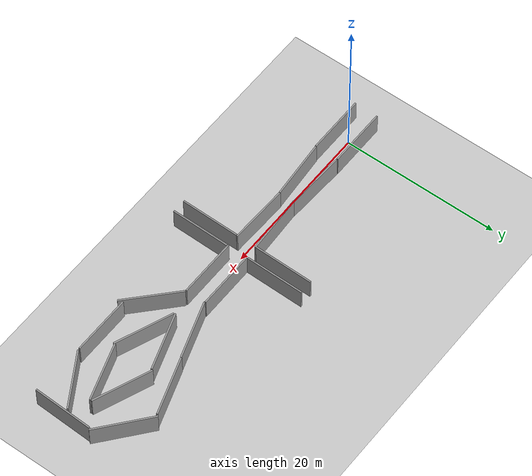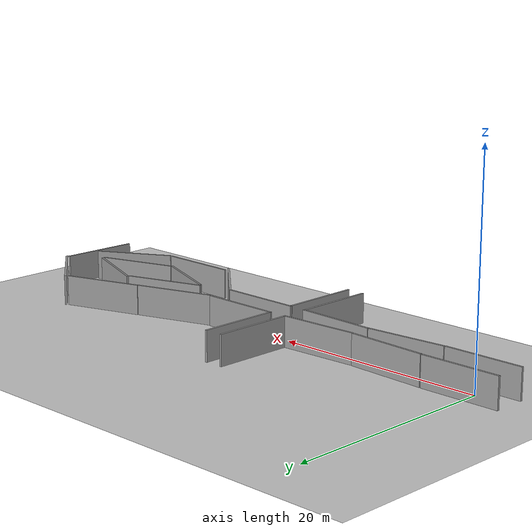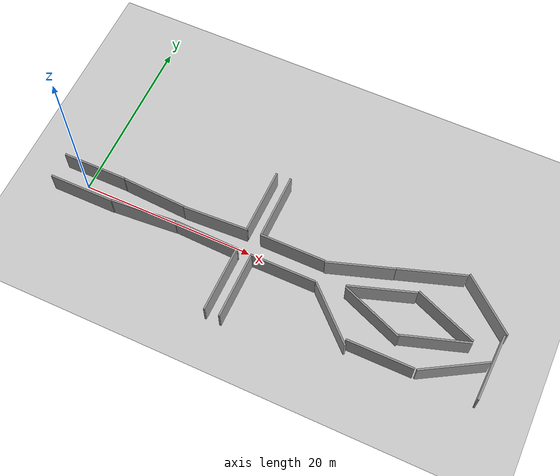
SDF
<sdf version="1.7">
 <world name="default">
  <light name="sun" type="directional">
   <pose>0 0 10 0 -0 0</pose>
   <diffuse>0.8 0.8 0.8 1</diffuse>
   <specular>0.2 0.2 0.2 1</specular>
   <attenuation>
    <range>1000</range>
    <constant>0.9</constant>
    <linear>0.01</linear>
    <quadratic>0.001</quadratic>
   </attenuation>
   <direction>-0.5 0.1 -0.9</direction>
   <spot><inner_angle>0</inner_angle><outer_angle>0</outer_angle><falloff>0</falloff></spot>
  </light>
  <model name="ground_plane">
   <static>1</static>
   <link name="link">
    <collision name="collision">
     <geometry><plane><normal>0 0 1</normal><size>100 100</size></plane></geometry>
     <surface><friction><ode><mu>100</mu><mu2>50</mu2></ode></friction></surface>
    </collision>
    <visual name="visual">
     <cast_shadows>0</cast_shadows>
     <geometry><plane><normal>0 0 1</normal><size>100 100</size></plane></geometry>
     <material>
      <script><uri>file://media/materials/scripts/gazebo.material</uri><name>Gazebo/Grey</name></script>
     </material>
    </visual>
   </link>
  </model>
  <gravity>0 0 -9.8</gravity>
  <magnetic_field>6e-06 2.3e-05 -4.2e-05</magnetic_field>
  <atmosphere type="adiabatic"/>
  <physics type="ode">
   <max_step_size>0.001</max_step_size>
   <real_time_factor>1</real_time_factor>
   <real_time_update_rate>1000</real_time_update_rate>
  </physics>
  <scene><ambient>0.4 0.4 0.4 1</ambient><background>0.7 0.7 0.7 1</background><shadows>1</shadows></scene>
  <spherical_coordinates>
   <surface_model>EARTH_WGS84</surface_model>
   <latitude_deg>0</latitude_deg>
   <longitude_deg>0</longitude_deg>
   <elevation>0</elevation>
   <heading_deg>0</heading_deg>
  </spherical_coordinates>
  <model name="grey_wall">
   <static>1</static>
   <link name="link">
    <pose>0 0 1.4 0 -0 0</pose>
    <collision name="collision"><geometry><box><size>7.5 0.2 2.8</size></box></geometry></collision>
    <visual name="visual">
     <cast_shadows>0</cast_shadows>
     <geometry><box><size>7.5 0.2 2.8</size></box></geometry>
     <material>
      <script>
       <uri>model://grey_wall/materials/scripts</uri>
       <uri>model://grey_wall/materials/textures</uri>
       <name>vrc/grey_wall</name>
      </script>
     </material>
    </visual>
   </link>
   <pose>0.45 1.5 0 0 -0 0</pose>
  </model>
  <model name="grey_wall_clone">
   <static>1</static>
   <link name="link">
    <pose>0 0 1.4 0 -0 0</pose>
    <collision name="collision"><geometry><box><size>7.5 0.2 2.8</size></box></geometry></collision>
    <visual name="visual">
     <cast_shadows>0</cast_shadows>
     <geometry><box><size>7.5 0.2 2.8</size></box></geometry>
     <material>
      <script>
       <uri>model://grey_wall/materials/scripts</uri>
       <uri>model://grey_wall/materials/textures</uri>
       <name>vrc/grey_wall</name>
      </script>
     </material>
    </visual>
   </link>
   <pose>0.45 -1.5 0 0 -0 0</pose>
  </model>
  <model name="grey_wall_clone_0">
   <static>1</static>
   <link name="link">
    <pose>0 0 1.4 0 -0 0</pose>
    <collision name="collision"><geometry><box><size>7.5 0.2 2.8</size></box></geometry></collision>
    <visual name="visual">
     <cast_shadows>0</cast_shadows>
     <geometry><box><size>7.5 0.2 2.8</size></box></geometry>
     <material>
      <script>
       <uri>model://grey_wall/materials/scripts</uri>
       <uri>model://grey_wall/materials/textures</uri>
       <name>vrc/grey_wall</name>
      </script>
     </material>
    </visual>
   </link>
   <pose>8.0405 1.2886 0 0 0 -0.048757</pose>
  </model>
  <model name="grey_wall_clone_1">
   <static>1</static>
   <link name="link">
    <pose>0 0 1.4 0 -0 0</pose>
    <collision name="collision"><geometry><box><size>7.5 0.2 2.8</size></box></geometry></collision>
    <visual name="visual">
     <cast_shadows>0</cast_shadows>
     <geometry><box><size>7.5 0.2 2.8</size></box></geometry>
     <material>
      <script>
       <uri>model://grey_wall/materials/scripts</uri>
       <uri>model://grey_wall/materials/textures</uri>
       <name>vrc/grey_wall</name>
      </script>
     </material>
    </visual>
   </link>
   <pose>7.99265 -1.17223 0 0 -0 0.076229</pose>
  </model>
  <model name="grey_wall_clone_2">
   <static>1</static>
   <link name="link">
    <pose>0 0 1.4 0 -0 0</pose>
    <collision name="collision"><geometry><box><size>7.5 0.2 2.8</size></box></geometry></collision>
    <visual name="visual">
     <cast_shadows>0</cast_shadows>
     <geometry><box><size>7.5 0.2 2.8</size></box></geometry>
     <material>
      <script>
       <uri>model://grey_wall/materials/scripts</uri>
       <uri>model://grey_wall/materials/textures</uri>
       <name>vrc/grey_wall</name>
      </script>
     </material>
    </visual>
   </link>
   <pose>15.4908 1.24997 0 0 -0 0.047505</pose>
  </model>
  <model name="grey_wall_clone_3">
   <static>1</static>
   <link name="link">
    <pose>0 0 1.4 0 -0 0</pose>
    <collision name="collision"><geometry><box><size>7.5 0.2 2.8</size></box></geometry></collision>
    <visual name="visual">
     <cast_shadows>0</cast_shadows>
     <geometry><box><size>7.5 0.2 2.8</size></box></geometry>
     <material>
      <script>
       <uri>model://grey_wall/materials/scripts</uri>
       <uri>model://grey_wall/materials/textures</uri>
       <name>vrc/grey_wall</name>
      </script>
     </material>
    </visual>
   </link>
   <pose>15.5134 -0.959954 0 0 0 -0.028174</pose>
  </model>
  <model name="grey_wall_clone_4">
   <static>1</static>
   <link name="link">
    <pose>0 0 1.4 0 -0 0</pose>
    <collision name="collision"><geometry><box><size>7.5 0.2 2.8</size></box></geometry></collision>
    <visual name="visual">
     <cast_shadows>0</cast_shadows>
     <geometry><box><size>7.5 0.2 2.8</size></box></geometry>
     <material>
      <script>
       <uri>model://grey_wall/materials/scripts</uri>
       <uri>model://grey_wall/materials/textures</uri>
       <name>vrc/grey_wall</name>
      </script>
     </material>
    </visual>
   </link>
   <pose>19.1831 5.27057 0 0 0 -1.58093</pose>
  </model>
  <model name="grey_wall_clone_4_clone">
   <static>1</static>
   <link name="link">
    <pose>0 0 1.4 0 -0 0</pose>
    <collision name="collision"><geometry><box><size>7.5 0.2 2.8</size></box></geometry></collision>
    <visual name="visual">
     <cast_shadows>0</cast_shadows>
     <geometry><box><size>7.5 0.2 2.8</size></box></geometry>
     <material>
      <script>
       <uri>model://grey_wall/materials/scripts</uri>
       <uri>model://grey_wall/materials/textures</uri>
       <name>vrc/grey_wall</name>
      </script>
     </material>
    </visual>
   </link>
   <pose>19.1157 -4.93014 0 0 0 -1.58093</pose>
  </model>
  <model name="grey_wall_clone_4_clone_0">
   <static>1</static>
   <link name="link">
    <pose>0 0 1.4 0 -0 0</pose>
    <collision name="collision"><geometry><box><size>7.5 0.2 2.8</size></box></geometry></collision>
    <visual name="visual">
     <cast_shadows>0</cast_shadows>
     <geometry><box><size>7.5 0.2 2.8</size></box></geometry>
     <material>
      <script>
       <uri>model://grey_wall/materials/scripts</uri>
       <uri>model://grey_wall/materials/textures</uri>
       <name>vrc/grey_wall</name>
      </script>
     </material>
    </visual>
   </link>
   <pose>20.84 -4.94754 0 0 0 -1.58093</pose>
  </model>
  <model name="grey_wall_clone_4_clone_1">
   <static>1</static>
   <link name="link">
    <pose>0 0 1.4 0 -0 0</pose>
    <collision name="collision"><geometry><box><size>7.5 0.2 2.8</size></box></geometry></collision>
    <visual name="visual">
     <cast_shadows>0</cast_shadows>
     <geometry><box><size>7.5 0.2 2.8</size></box></geometry>
     <material>
      <script>
       <uri>model://grey_wall/materials/scripts</uri>
       <uri>model://grey_wall/materials/textures</uri>
       <name>vrc/grey_wall</name>
      </script>
     </material>
    </visual>
   </link>
   <pose>20.8674 5.30497 0 0 0 -1.58093</pose>
  </model>
  <model name="grey_wall_clone_3_clone">
   <static>1</static>
   <link name="link">
    <pose>0 0 1.4 0 -0 0</pose>
    <collision name="collision"><geometry><box><size>7.5 0.2 2.8</size></box></geometry></collision>
    <visual name="visual">
     <cast_shadows>0</cast_shadows>
     <geometry><box><size>7.5 0.2 2.8</size></box></geometry>
     <material>
      <script>
       <uri>model://grey_wall/materials/scripts</uri>
       <uri>model://grey_wall/materials/textures</uri>
       <name>vrc/grey_wall</name>
      </script>
     </material>
    </visual>
   </link>
   <pose>24.5451 -1.0915 0 0 -0 0</pose>
  </model>
  <model name="grey_wall_clone_3_clone_0">
   <static>1</static>
   <link name="link">
    <pose>0 0 1.4 0 -0 0</pose>
    <collision name="collision"><geometry><box><size>7.5 0.2 2.8</size></box></geometry></collision>
    <visual name="visual">
     <cast_shadows>0</cast_shadows>
     <geometry><box><size>7.5 0.2 2.8</size></box></geometry>
     <material>
      <script>
       <uri>model://grey_wall/materials/scripts</uri>
       <uri>model://grey_wall/materials/textures</uri>
       <name>vrc/grey_wall</name>
      </script>
     </material>
    </visual>
   </link>
   <pose>24.5 1.496 0 0 -0 0</pose>
  </model>
  <model name="grey_wall_clone_5">
   <static>1</static>
   <link name="link">
    <pose>0 0 1.4 0 -0 0</pose>
    <collision name="collision"><geometry><box><size>7.5 0.2 2.8</size></box></geometry></collision>
    <visual name="visual">
     <cast_shadows>0</cast_shadows>
     <geometry><box><size>7.5 0.2 2.8</size></box></geometry>
     <material>
      <script>
       <uri>model://grey_wall/materials/scripts</uri>
       <uri>model://grey_wall/materials/textures</uri>
       <name>vrc/grey_wall</name>
      </script>
     </material>
    </visual>
   </link>
   <pose>31.856 2.57631 0 0 -0 0.318871</pose>
  </model>
  <model name="grey_wall_clone_3_clone_clone">
   <static>1</static>
   <link name="link">
    <pose>0 0 1.4 0 -0 0</pose>
    <collision name="collision"><geometry><box><size>7.5 0.2 2.8</size></box></geometry></collision>
    <visual name="visual">
     <cast_shadows>0</cast_shadows>
     <geometry><box><size>7.5 0.2 2.8</size></box></geometry>
     <material>
      <script>
       <uri>model://grey_wall/materials/scripts</uri>
       <uri>model://grey_wall/materials/textures</uri>
       <name>vrc/grey_wall</name>
      </script>
     </material>
    </visual>
   </link>
   <pose>42.0085 0.942221 0 0 0 -0.386139</pose>
  </model>
  <model name="grey_wall_clone_3_clone_clone_clone">
   <static>1</static>
   <link name="link">
    <pose>0 0 1.4 0 -0 0</pose>
    <collision name="collision"><geometry><box><size>7.5 0.2 2.8</size></box></geometry></collision>
    <visual name="visual">
     <cast_shadows>0</cast_shadows>
     <geometry><box><size>7.5 0.2 2.8</size></box></geometry>
     <material>
      <script>
       <uri>model://grey_wall/materials/scripts</uri>
       <uri>model://grey_wall/materials/textures</uri>
       <name>vrc/grey_wall</name>
      </script>
     </material>
    </visual>
   </link>
   <pose>37.3824 -5.65589 0 0 -0 0</pose>
  </model>
  <model name="grey_wall_clone_5_clone">
   <static>1</static>
   <link name="link">
    <pose>0 0 1.4 0 -0 0</pose>
    <collision name="collision"><geometry><box><size>7.5 0.2 2.8</size></box></geometry></collision>
    <visual name="visual">
     <cast_shadows>0</cast_shadows>
     <geometry><box><size>7.5 0.2 2.8</size></box></geometry>
     <material>
      <script>
       <uri>model://grey_wall/materials/scripts</uri>
       <uri>model://grey_wall/materials/textures</uri>
       <name>vrc/grey_wall</name>
      </script>
     </material>
    </visual>
   </link>
   <pose>38.9993 4.97139 0 0 -0 0.318871</pose>
  </model>
  <model name="grey_wall_clone_5_clone_0">
   <static>1</static>
   <link name="link">
    <pose>0 0 1.4 0 -0 0</pose>
    <collision name="collision"><geometry><box><size>7.5 0.2 2.8</size></box></geometry></collision>
    <visual name="visual">
     <cast_shadows>0</cast_shadows>
     <geometry><box><size>7.5 0.2 2.8</size></box></geometry>
     <material>
      <script>
       <uri>model://grey_wall/materials/scripts</uri>
       <uri>model://grey_wall/materials/textures</uri>
       <name>vrc/grey_wall</name>
      </script>
     </material>
    </visual>
   </link>
   <pose>34.9264 0.991002 0 0 -0 0.318871</pose>
  </model>
  <model name="grey_wall_clone_3_clone_clone_clone_clone">
   <static>1</static>
   <link name="link">
    <pose>0 0 1.4 0 -0 0</pose>
    <collision name="collision"><geometry><box><size>7.5 0.2 2.8</size></box></geometry></collision>
    <visual name="visual">
     <cast_shadows>0</cast_shadows>
     <geometry><box><size>7.5 0.2 2.8</size></box></geometry>
     <material>
      <script>
       <uri>model://grey_wall/materials/scripts</uri>
       <uri>model://grey_wall/materials/textures</uri>
       <name>vrc/grey_wall</name>
      </script>
     </material>
    </visual>
   </link>
   <pose>45.5889 3.98664 0 0 0 -0.69629</pose>
  </model>
  <model name="grey_wall_clone_3_clone_clone_clone_clone_0">
   <static>1</static>
   <link name="link">
    <pose>0 0 1.4 0 -0 0</pose>
    <collision name="collision"><geometry><box><size>7.5 0.2 2.8</size></box></geometry></collision>
    <visual name="visual">
     <cast_shadows>0</cast_shadows>
     <geometry><box><size>7.5 0.2 2.8</size></box></geometry>
     <material>
      <script>
       <uri>model://grey_wall/materials/scripts</uri>
       <uri>model://grey_wall/materials/textures</uri>
       <name>vrc/grey_wall</name>
      </script>
     </material>
    </visual>
   </link>
   <pose>34.9348 -1.74384 0 0 0 -0.380713</pose>
  </model>
  <model name="grey_wall_clone_3_clone_clone_clone_clone_1">
   <static>1</static>
   <link name="link">
    <pose>0 0 1.4 0 -0 0</pose>
    <collision name="collision"><geometry><box><size>7.5 0.2 2.8</size></box></geometry></collision>
    <visual name="visual">
     <cast_shadows>0</cast_shadows>
     <geometry><box><size>7.5 0.2 2.8</size></box></geometry>
     <material>
      <script>
       <uri>model://grey_wall/materials/scripts</uri>
       <uri>model://grey_wall/materials/textures</uri>
       <name>vrc/grey_wall</name>
      </script>
     </material>
    </visual>
   </link>
   <pose>31.113 -3.70223 0 0 0 -0.758115</pose>
  </model>
  <model name="grey_wall_clone_4_clone_1_clone">
   <static>1</static>
   <link name="link">
    <pose>0 0 1.4 0 -0 0</pose>
    <collision name="collision"><geometry><box><size>7.5 0.2 2.8</size></box></geometry></collision>
    <visual name="visual">
     <cast_shadows>0</cast_shadows>
     <geometry><box><size>7.5 0.2 2.8</size></box></geometry>
     <material>
      <script>
       <uri>model://grey_wall/materials/scripts</uri>
       <uri>model://grey_wall/materials/textures</uri>
       <name>vrc/grey_wall</name>
      </script>
     </material>
    </visual>
   </link>
   <pose>48.0894 -2.29511 0 0 0 -1.60768</pose>
  </model>
  <model name="grey_wall_clone_4_clone_1_clone_0">
   <static>1</static>
   <link name="link">
    <pose>0 0 1.4 0 -0 0</pose>
    <collision name="collision"><geometry><box><size>7.5 0.2 2.8</size></box></geometry></collision>
    <visual name="visual">
     <cast_shadows>0</cast_shadows>
     <geometry><box><size>7.5 0.2 2.8</size></box></geometry>
     <material>
      <script>
       <uri>model://grey_wall/materials/scripts</uri>
       <uri>model://grey_wall/materials/textures</uri>
       <name>vrc/grey_wall</name>
      </script>
     </material>
    </visual>
   </link>
   <pose>41.9186 -1.82714 0 0 0 -2.82943</pose>
  </model>
  <model name="grey_wall_clone_3_clone_clone_clone_clone_2">
   <static>1</static>
   <link name="link">
    <pose>0 0 1.4 0 -0 0</pose>
    <collision name="collision"><geometry><box><size>7.5 0.2 2.8</size></box></geometry></collision>
    <visual name="visual">
     <cast_shadows>0</cast_shadows>
     <geometry><box><size>7.5 0.2 2.8</size></box></geometry>
     <material>
      <script>
       <uri>model://grey_wall/materials/scripts</uri>
       <uri>model://grey_wall/materials/textures</uri>
       <name>vrc/grey_wall</name>
      </script>
     </material>
    </visual>
   </link>
   <pose>44.5716 -3.77253 0 0 -0 0.530268</pose>
  </model>
 </world>
</sdf>
